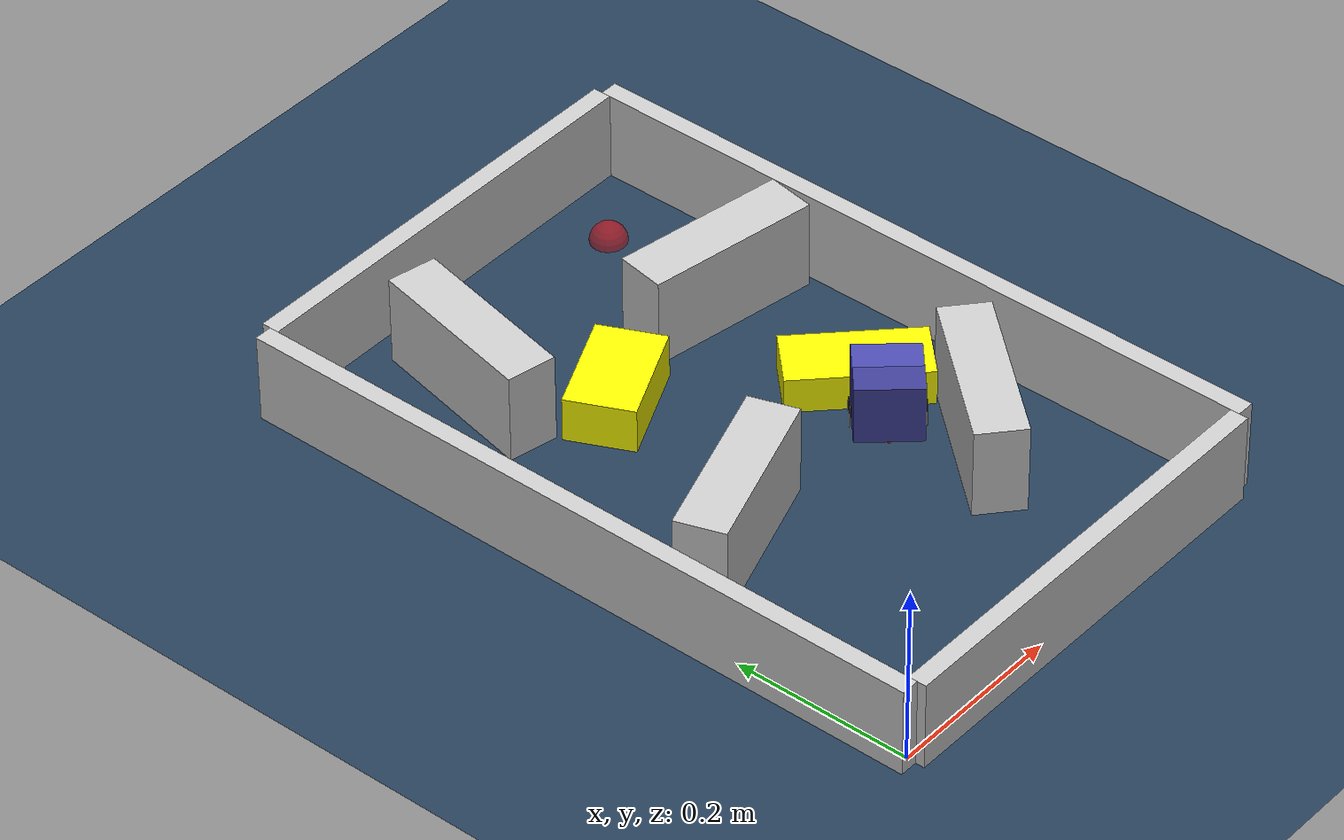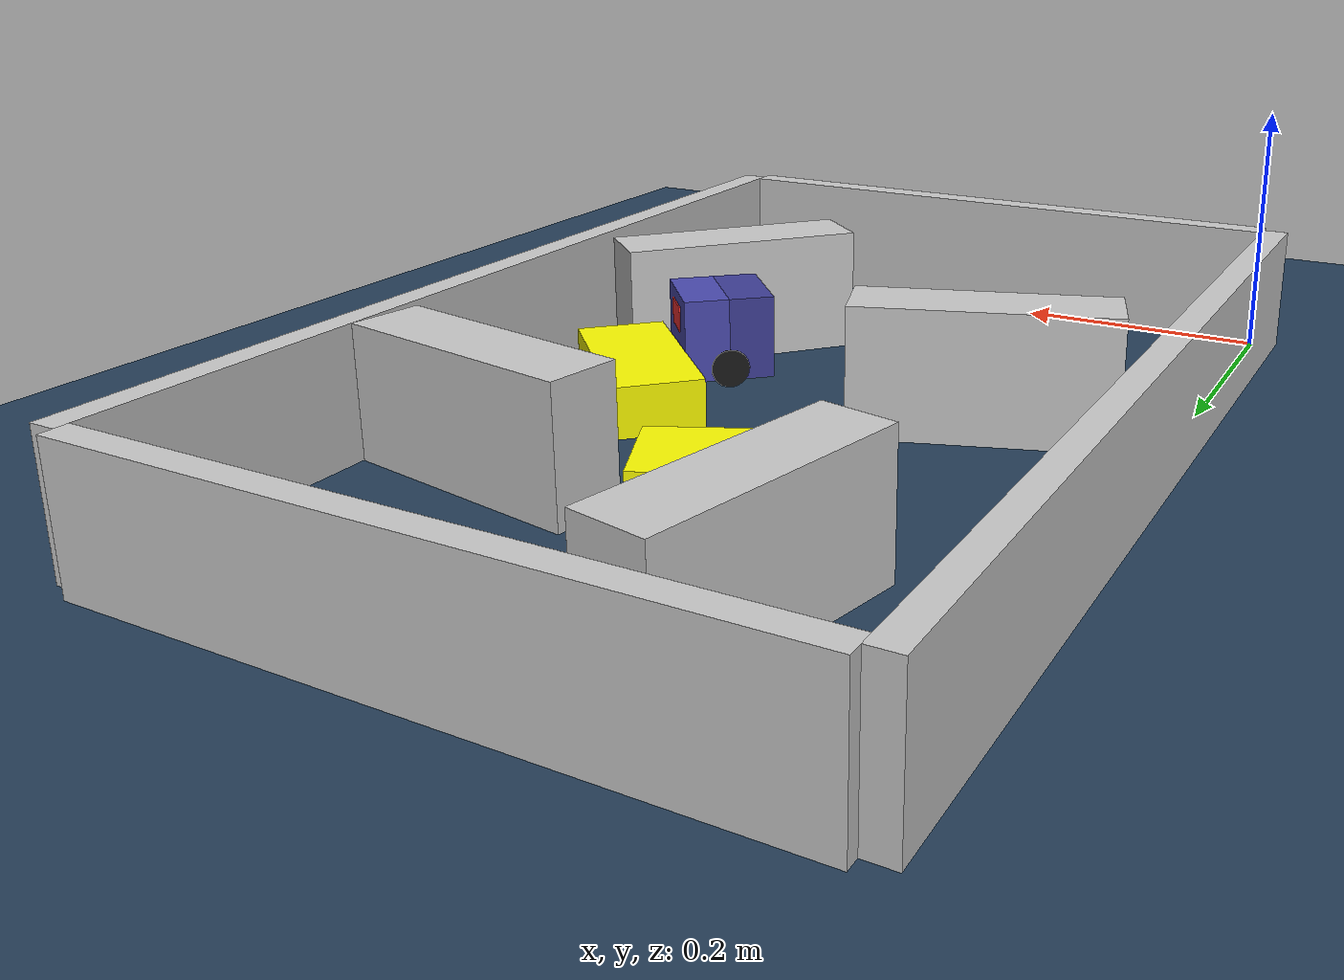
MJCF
<?xml version='1.0' encoding='utf-8'?>
<mujoco model="real_buildable">
  <compiler angle="degree" />
  <option timestep="0.002" integrator="implicitfast" iterations="100" cone="elliptic" />
  <default>
    <geom density="1" />
  </default>
  <asset>
    <texture builtin="gradient" height="3072" rgb1="0.3 0.5 0.7" rgb2="0 0 0" type="skybox" width="512" />
    <texture builtin="checker" height="300" mark="edge" markrgb="0.8 0.8 0.8" name="groundplane" rgb1="0.2 0.3 0.4" rgb2="0.1 0.2 0.3" type="2d" width="300" />
    <material name="groundplane" reflectance="0.2" texrepeat="5 5" texture="groundplane" texuniform="true" />
  </asset>
  <worldbody>
    <light dir="0 0 -1" directional="true" pos="0 0 1.5" />
    <geom name="floor" type="plane" condim="4" friction="0.5 0.005 0.001" material="groundplane" size="0 0 0.05" />
    <body name="walls">
      <geom name="wall_boundary_left" type="box" condim="4" friction="1.0 0.005 0.0001" rgba="0.8 0.8 0.8 1" pos="-0.010000 0.387500 0.050000" euler="0 0 0.000000" size="0.010000 0.397500 0.050000" />
      <geom name="wall_boundary_right" type="box" condim="4" friction="1.0 0.005 0.0001" rgba="0.8 0.8 0.8 1" pos="0.500000 0.387500 0.050000" euler="0 0 0.000000" size="0.010000 0.397500 0.050000" />
      <geom name="wall_boundary_bottom" type="box" condim="4" friction="1.0 0.005 0.0001" rgba="0.8 0.8 0.8 1" pos="0.245000 -0.010000 0.050000" euler="0 0 0.000000" size="0.245000 0.010000 0.050000" />
      <geom name="wall_boundary_top" type="box" condim="4" friction="1.0 0.005 0.0001" rgba="0.8 0.8 0.8 1" pos="0.245000 0.785000 0.050000" euler="0 0 0.000000" size="0.245000 0.010000 0.050000" />
      <geom name="wall_inner_1" type="box" condim="4" friction="1.0 0.005 0.0001" rgba="0.8 0.8 0.8 1" pos="0.130000 0.309000 0.050000" euler="0 0 18.800000" size="0.097500 0.027500 0.050000" />
      <geom name="wall_inner_2" type="box" condim="4" friction="1.0 0.005 0.0001" rgba="0.8 0.8 0.8 1" pos="0.390000 0.220000 0.050000" euler="0 0 48.800000" size="0.097500 0.027500 0.050000" />
      <geom name="wall_inner_3" type="box" condim="4" friction="1.0 0.005 0.0001" rgba="0.8 0.8 0.8 1" pos="0.389000 0.551000 0.050000" euler="0 0 170.300000" size="0.097500 0.027500 0.050000" />
      <geom name="wall_inner_4" type="box" condim="4" friction="1.0 0.005 0.0001" rgba="0.8 0.8 0.8 1" pos="0.134000 0.646000 0.050000" euler="0 0 78.000000" size="0.097500 0.027500 0.050000" />
    </body>
    <body name="car" pos="0.35264732733490217 0.30522054539786581 0.01" quat="0.93432679143478803 0 0 0.35641751753691087">
      <freejoint name="car_freejoint" />
      <inertial pos="0 0 0.0375" mass="0.35" diaginertia="0.000266 0.000266 0.000286" />
      <geom name="front_chassis_collision" type="box" pos="0.0175 0 0.0375" size="0.0175 0.035 0.0325" rgba="0.3 0.3 0.7 1" />
      <geom name="rear_chassis_collision" type="box" pos="-0.0175 0 0.0375" size="0.0175 0.035 0.0325" rgba="0.25 0.25 0.6 1" />
      <geom name="front_marker" type="box" pos="0.034 0 0.0505" size="0.002 0.015 0.01" rgba="1 0.2 0.2 1" contype="0" conaffinity="0" />
      <body name="rear_support_body" pos="-0.03 0 0.0025">
        <joint name="rear_caster_joint" type="ball" damping="0.0001" />
        <inertial pos="0 0 0" mass="0.025" diaginertia="0.000001 0.000001 0.000001" />
        <geom name="rear_support" type="sphere" pos="0 0 0" size="0.0025" friction="0 0 0" rgba="0.7 0.1 0.1 1" />
      </body>
      <body name="front_support_body" pos="0.03 0 0.0025">
        <joint name="front_caster_joint" type="ball" damping="0.0001" />
        <inertial pos="0 0 0" mass="0.025" diaginertia="0.000001 0.000001 0.000001" />
        <geom name="front_support" type="sphere" pos="0 0 0" size="0.0025" friction="0 0 0" rgba="0.1 0.7 0.1 1" />
      </body>
      <body name="left_wheel" pos="0 0.0375 0.015">
        <inertial pos="0 0 0" mass="0.05" diaginertia="0.000003 0.000006 0.000003" />
        <joint name="left_wheel_joint" type="hinge" axis="0 1 0" damping="0.01" armature="0.0001" />
        <geom name="left_wheel_collision" type="cylinder" size="0.015 0.0005" euler="90 0 0" rgba="0.1 0.1 0.1 1" />
      </body>
      <body name="right_wheel" pos="0 -0.0375 0.015">
        <inertial pos="0 0 0" mass="0.05" diaginertia="0.000003 0.000006 0.000003" />
        <joint name="right_wheel_joint" type="hinge" axis="0 1 0" damping="0.01" armature="0.0001" />
        <geom name="right_wheel_collision" type="cylinder" size="0.015 0.0005" euler="90 0 0" rgba="0.1 0.1 0.1 1" />
      </body>
    </body>
    <body name="obstacle_0_movable">
      <geom name="obstacle_0_movable" condim="4" pos="0.38722704056187962 0.37159264538146747 0.02" friction="1 0.005 0.0001" rgba="1 1 0 1" size="0.035000 0.075000 0.020000" type="box" mass="0.1" quat="0.92350146085826257 0 0 0.38359490584815492" />
      <joint type="free" />
    </body>
    <body name="obstacle_1_movable">
      <geom name="obstacle_1_movable" condim="4" pos="0.21200000000000016 0.52999999999999903 0.025000000000000001" friction="1 0.005 0.0001" rgba="1 1 0 1" size="0.037500 0.060000 0.025000" type="box" mass="0.1" quat="0.84386000697550245 0 0 -0.53656340597109764" />
      <joint type="free" />
    </body>
    <site name="goal" type="sphere" pos="0.408000 0.708000 0.0" size="0.02" rgba="1 0 0 0.5" />
  </worldbody>
  <actuator>
    <velocity name="left_wheel_drive" joint="left_wheel_joint" ctrlrange="-25 25" kv="0.75" forcerange="-0.5 0.5" />
    <velocity name="right_wheel_drive" joint="right_wheel_joint" ctrlrange="-25 25" kv="0.75" forcerange="-0.5 0.5" />
  </actuator>
</mujoco>
